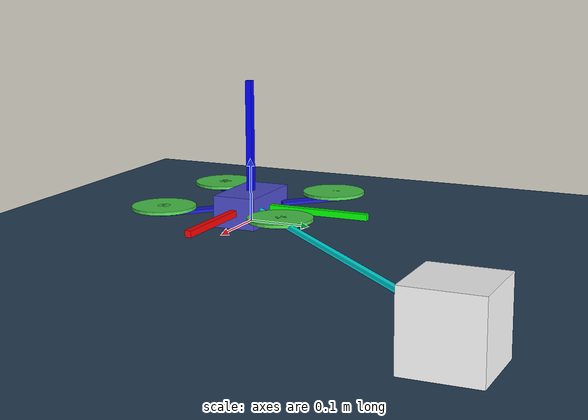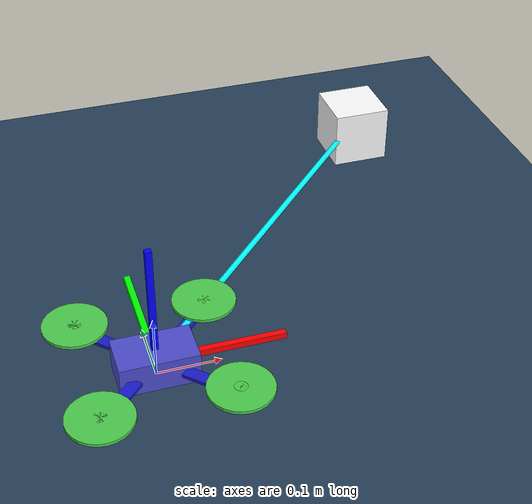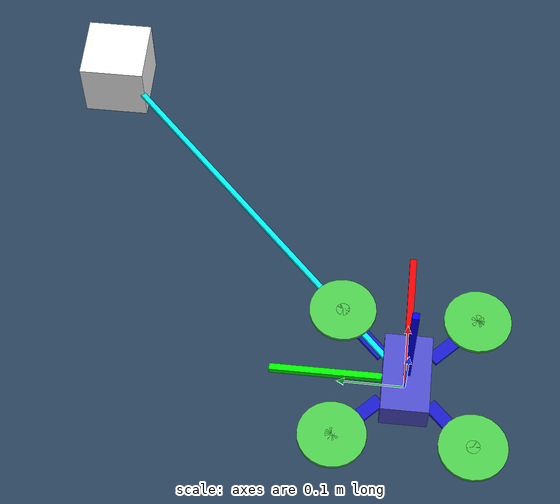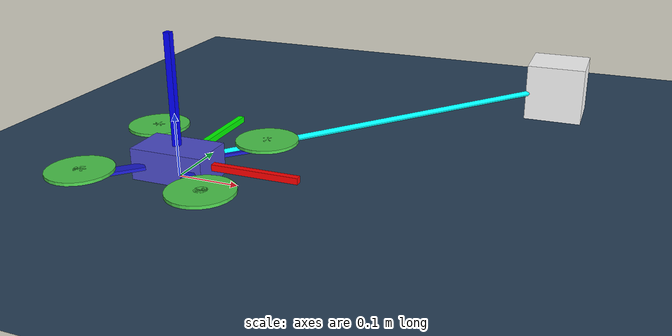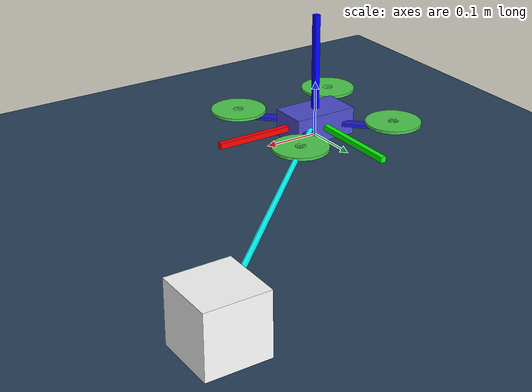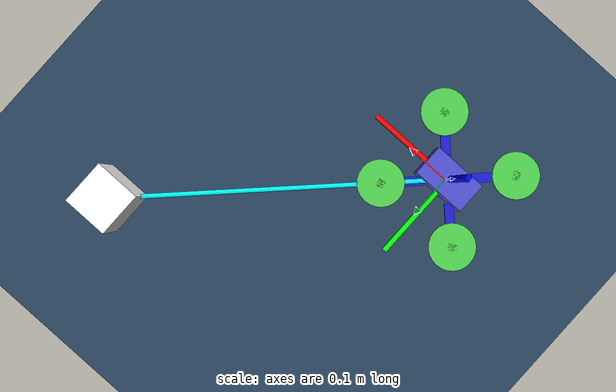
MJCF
<mujoco model="quadrotor0">
	<compiler inertiafromgeom="true" coordinate="local"/>
	<option	timestep="0.01" gravity="0 0 -9.81" density="1.2" viscosity="1e-5">
        <flag gravity="enable"/>
    </option>
	<visual>
        <rgba haze="0.5 0.5 0.5 1"/>
        <global offwidth="1920" offheight="1080" elevation="-20" azimuth="120"/>
    </visual>

    <asset>
        <texture type="skybox" builtin="gradient" rgb1="0.4 0.6 0.8" rgb2="0 0 0" width="32" height="512"/>
        <texture name="grid" type="2d" builtin="checker" rgb1="0.2 0.3 0.4" rgb2="0.1 0.2 0.3" width="512" height="512"/>
        <material name="grid" texture="grid" texrepeat="1 1" texuniform="true" reflectance="0.2"/>
    </asset>
	<worldbody>
		<geom name="floor" size="0 0 0.01" type="plane" material="grid" condim="1"/>
        <light name="floorlight" mode="fixed" pos="0 0 50" dir="0 0 -1" diffuse="0.8 0.8 0.8" specular="0.3 0.3 0.3"/>
		<body name="quadrotor" pos="0 0 0.025" >
			<geom name="core" type="box" pos="0 0 0" quat = "1. 0. 0. 0" size="0.06 0.035 0.025"  rgba="0.3 0.3 0.8 1" mass = ".1"/>

			<geom name="a00" type="box" pos=".071 0.071 0.0" size="0.05 0.01 0.0025"  quat = ".924 0.0 0.0 0.383" rgba="0.1 0.1 0.8 1" mass = ".025"/>
			<geom name="a10" type="box" pos=".071 -0.071 0.0" size="0.05 0.01 0.0025"  quat = ".383 0.0 0.0 0.924" rgba="0.1 0.1 0.8 1" mass = ".025"/>
			<geom name="a20" type="box" pos="-0.071 -0.071 0.0" size="0.05 0.01 0.0025"  quat = "-.383 0.0 0.0 0.924" rgba="0.1 0.1 0.8 1" mass = ".025"/>
			<geom name="a30" type="box" pos="-.071 0.071 0.0" size="0.05 0.01 0.0025"  quat = ".924 0.0 0.0 -0.383" rgba="0.1 0.1 0.8 1" mass = ".025"/>

			<joint name="root"   type="free" damping="0" armature="0" pos="0 0 0" />

			<!-- Motor sites to attach motor actuators -->
            <site name="motor0" type="cylinder" pos=" 0.1  0.1 0.01"  size="0.01 0.0025"  quat = "1.0 0.0 0.0 0." rgba="0.3 0.8 0.3 1"/>
            <site name="motor1" type="cylinder" pos=" 0.1 -0.1 0.01"  size="0.01 0.0025"  quat = "1.0 0.0 0.0 0." rgba="0.3 0.8 0.3 1"/>
            <site name="motor2" type="cylinder" pos="-0.1 -0.1 0.01"  size="0.01 0.0025"  quat = "1.0 0.0 0.0 0." rgba="0.3 0.8 0.3 1"/>
            <site name="motor3" type="cylinder" pos="-0.1  0.1 0.01"  size="0.01 0.0025"  quat = "1.0 0.0 0.0 0." rgba="0.3 0.8 0.3 1"/>

			<!-- Thruster geometries for collisions since site's are excluded from collision checking -->
            <geom name="thruster0" type="cylinder" pos=" 0.1  0.1  0.01" size="0.05 0.0025"  quat = "1.0 0.0 0.0 0." rgba="0.3 0.8 0.3 1" mass = ".025"/>
            <geom name="thruster1" type="cylinder" pos=" 0.1 -0.1  0.01" size="0.05 0.0025"  quat = "1.0 0.0 0.0 0." rgba="0.3 0.8 0.3 1" mass = ".025"/>
            <geom name="thruster2" type="cylinder" pos="-0.1 -0.1  0.01" size="0.05 0.0025"  quat = "1.0 0.0 0.0 0." rgba="0.3 0.8 0.3 1" mass = ".025"/>
            <geom name="thruster3" type="cylinder" pos="-0.1  0.1  0.01" size="0.05 0.0025"  quat = "1.0 0.0 0.0 0." rgba="0.3 0.8 0.3 1" mass = ".025"/>

            <!-- Visualization of the coordinate frame -->
			<site name="qcX" type="box" pos="0.1 0.0 0.0" size="0.1 0.005 0.005"  quat = " 1.000  0.0  0.0    0."     rgba="1 0 0 1" />
			<site name="qcY" type="box" pos="0.0 0.1 0.0" size="0.1 0.005 0.005"  quat = " 0.707  0.0  0.0    0.707"  rgba="0 1 0 1" />
			<site name="qcZ" type="box" pos="0.0 0.0 0.1" size="0.1 0.005 0.005"  quat = "-0.707  0.0  0.707  0."     rgba="0 0 1 1" />

            <site name="hook" pos="0 0 0" type="sphere" size="0.0020"/>

		</body>
        <body name="payload" pos="0.5 0.5 0.05">
            <geom name="payload" type="box" pos="0 0 0" size="0.05 0.05 0.05"  rgba="1 1 1 1" mass = ".05" contype="6" conaffinity="6"/>
            <joint name="hook" type="free" damping="0" armature="0" pos="0 0 0" />
            <site name="corner" pos="0 0 0"/>
        </body>
	</worldbody>
    <tendon>
        <spatial limited="true" range="0 0.752" rgba="0 1 1 1" width=".005">
            <site site="hook"/>
            <site site="corner"/>
        </spatial>
    </tendon>
    <actuator>
        <motor ctrllimited="true" ctrlrange="0.0 1.0" gear="0  0. 1. 0. 0. -0.1" site="motor0"/>
        <motor ctrllimited="true" ctrlrange="0.0 1.0" gear="0  0. 1. 0. 0.  0.1" site="motor1"/>
        <motor ctrllimited="true" ctrlrange="0.0 1.0" gear="0  0. 1. 0. 0. -0.1" site="motor2"/>
        <motor ctrllimited="true" ctrlrange="0.0 1.0" gear="0  0. 1. 0. 0.  0.1" site="motor3"/>
	</actuator>
</mujoco>
